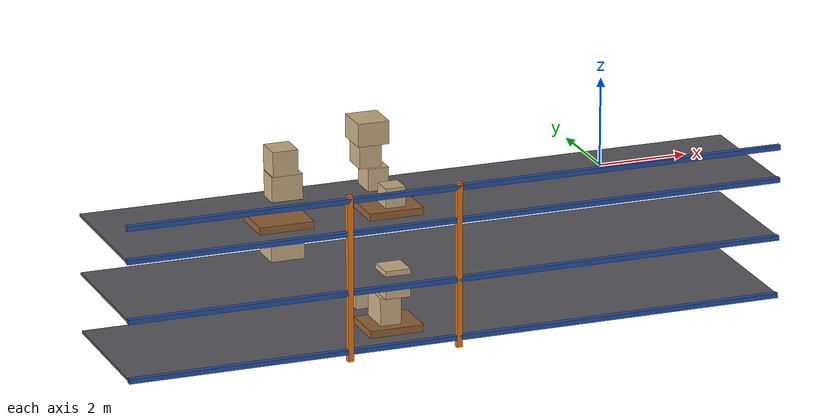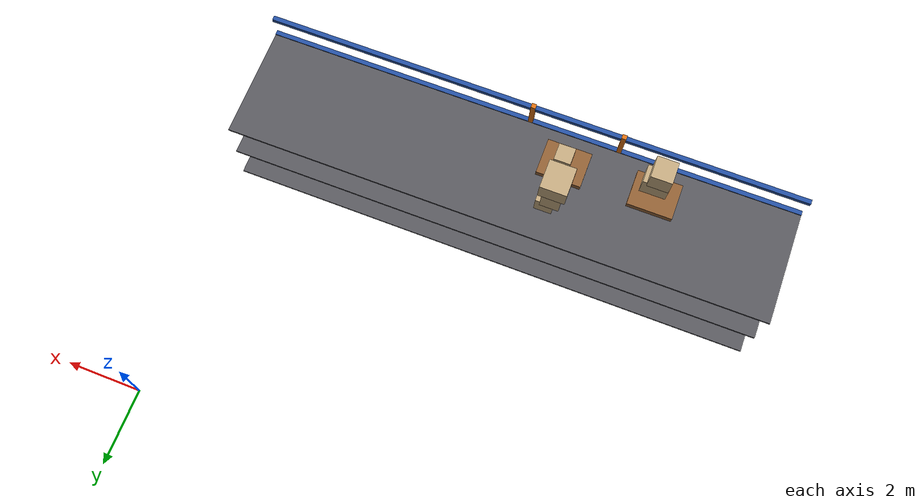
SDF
<sdf version="1.7">
 <world name="default">
  <model name="warehouse_racks">
   <static>1</static>
   <link name="r00_u2_0">
    <pose>-9.33333 -9.5 1.75 0 0 0</pose>
    <collision name="c"><geometry><box><size>0.12 0.12 3.5</size></box></geometry></collision>
    <visual name="v">
     <geometry><box><size>0.12 0.12 3.5</size></box></geometry>
     <material>
      <ambient>0.910 0.471 0.086 1</ambient>
      <diffuse>0.910 0.471 0.086 1</diffuse>
      <specular>0.1 0.1 0.1 1</specular>
     </material>
    </visual>
   </link>
   <link name="r00_u3_0">
    <pose>-7 -9.5 1.75 0 0 0</pose>
    <collision name="c"><geometry><box><size>0.12 0.12 3.5</size></box></geometry></collision>
    <visual name="v">
     <geometry><box><size>0.12 0.12 3.5</size></box></geometry>
     <material>
      <ambient>0.910 0.471 0.086 1</ambient>
      <diffuse>0.910 0.471 0.086 1</diffuse>
      <specular>0.1 0.1 0.1 1</specular>
     </material>
    </visual>
   </link>
   <link name="r00_b0_0">
    <pose>-7 -9.5 0.2 0 0 0</pose>
    <collision name="c"><geometry><box><size>14 0.12 0.1</size></box></geometry></collision>
    <visual name="v">
     <geometry><box><size>14 0.12 0.1</size></box></geometry>
     <material>
      <ambient>0.149 0.329 0.659 1</ambient>
      <diffuse>0.149 0.329 0.659 1</diffuse>
      <specular>0.1 0.1 0.1 1</specular>
     </material>
    </visual>
   </link>
   <link name="r00_b1_0">
    <pose>-7 -9.5 1.45 0 0 0</pose>
    <collision name="c"><geometry><box><size>14 0.12 0.1</size></box></geometry></collision>
    <visual name="v">
     <geometry><box><size>14 0.12 0.1</size></box></geometry>
     <material>
      <ambient>0.149 0.329 0.659 1</ambient>
      <diffuse>0.149 0.329 0.659 1</diffuse>
      <specular>0.1 0.1 0.1 1</specular>
     </material>
    </visual>
   </link>
   <link name="r00_b2_0">
    <pose>-7 -9.5 2.7 0 0 0</pose>
    <collision name="c"><geometry><box><size>14 0.12 0.1</size></box></geometry></collision>
    <visual name="v">
     <geometry><box><size>14 0.12 0.1</size></box></geometry>
     <material>
      <ambient>0.149 0.329 0.659 1</ambient>
      <diffuse>0.149 0.329 0.659 1</diffuse>
      <specular>0.1 0.1 0.1 1</specular>
     </material>
    </visual>
   </link>
   <link name="r00_b3_0">
    <pose>-7 -9.5 3.4 0 0 0</pose>
    <collision name="c"><geometry><box><size>14 0.12 0.1</size></box></geometry></collision>
    <visual name="v">
     <geometry><box><size>14 0.12 0.1</size></box></geometry>
     <material>
      <ambient>0.149 0.329 0.659 1</ambient>
      <diffuse>0.149 0.329 0.659 1</diffuse>
      <specular>0.1 0.1 0.1 1</specular>
     </material>
    </visual>
   </link>
   <link name="r00_d0">
    <pose>-7 -8 0.2 0 0 0</pose>
    <collision name="c"><geometry><box><size>14 3 0.05</size></box></geometry></collision>
    <visual name="v">
     <geometry><box><size>14 3 0.05</size></box></geometry>
     <material>
      <ambient>0.361 0.361 0.384 1</ambient>
      <diffuse>0.361 0.361 0.384 1</diffuse>
      <specular>0.1 0.1 0.1 1</specular>
     </material>
    </visual>
   </link>
   <link name="r00_d1">
    <pose>-7 -8 1.45 0 0 0</pose>
    <collision name="c"><geometry><box><size>14 3 0.05</size></box></geometry></collision>
    <visual name="v">
     <geometry><box><size>14 3 0.05</size></box></geometry>
     <material>
      <ambient>0.361 0.361 0.384 1</ambient>
      <diffuse>0.361 0.361 0.384 1</diffuse>
      <specular>0.1 0.1 0.1 1</specular>
     </material>
    </visual>
   </link>
   <link name="r00_d2">
    <pose>-7 -8 2.7 0 0 0</pose>
    <collision name="c"><geometry><box><size>14 3 0.05</size></box></geometry></collision>
    <visual name="v">
     <geometry><box><size>14 3 0.05</size></box></geometry>
     <material>
      <ambient>0.361 0.361 0.384 1</ambient>
      <diffuse>0.361 0.361 0.384 1</diffuse>
      <specular>0.1 0.1 0.1 1</specular>
     </material>
    </visual>
   </link>
  </model>
  <model name="warehouse_loads">
   <static>1</static>
   <link name="r00L0_1_1_c1">
    <pose>-10.4206 -7.46911 1.13352 0 0 0</pose>
    <collision name="c"><geometry><box><size>0.425592 0.634315 0.545984</size></box></geometry></collision>
    <visual name="v">
     <geometry><box><size>0.425592 0.634315 0.545984</size></box></geometry>
     <material>
      <ambient>0.792 0.690 0.518 1</ambient>
      <diffuse>0.792 0.690 0.518 1</diffuse>
      <specular>0.1 0.1 0.1 1</specular>
     </material>
    </visual>
   </link>
   <link name="r00L0_2_0_p">
    <pose>-8.16667 -8.6 0.325 0 0 0</pose>
    <collision name="c"><geometry><box><size>1.15 0.95 0.15</size></box></geometry></collision>
    <visual name="v">
     <geometry><box><size>1.15 0.95 0.15</size></box></geometry>
     <material>
      <ambient>0.588 0.392 0.216 1</ambient>
      <diffuse>0.588 0.392 0.216 1</diffuse>
      <specular>0.1 0.1 0.1 1</specular>
     </material>
    </visual>
   </link>
   <link name="r00L0_2_0_c0">
    <pose>-8.22275 -8.5095 0.695943 0 0 0</pose>
    <collision name="c"><geometry><box><size>0.450043 0.708991 0.591886</size></box></geometry></collision>
    <visual name="v">
     <geometry><box><size>0.450043 0.708991 0.591886</size></box></geometry>
     <material>
      <ambient>0.792 0.690 0.518 1</ambient>
      <diffuse>0.792 0.690 0.518 1</diffuse>
      <specular>0.1 0.1 0.1 1</specular>
     </material>
    </visual>
   </link>
   <link name="r00L0_2_0_c1">
    <pose>-8.10018 -8.66771 1.29062 0 0 0</pose>
    <collision name="c"><geometry><box><size>0.53939 0.570541 0.597468</size></box></geometry></collision>
    <visual name="v">
     <geometry><box><size>0.53939 0.570541 0.597468</size></box></geometry>
     <material>
      <ambient>0.792 0.690 0.518 1</ambient>
      <diffuse>0.792 0.690 0.518 1</diffuse>
      <specular>0.1 0.1 0.1 1</specular>
     </material>
    </visual>
   </link>
   <link name="r00L0_2_1_c0">
    <pose>-8.19534 -7.48156 0.62766 0 0 0</pose>
    <collision name="c"><geometry><box><size>0.747925 0.541333 0.455319</size></box></geometry></collision>
    <visual name="v">
     <geometry><box><size>0.747925 0.541333 0.455319</size></box></geometry>
     <material>
      <ambient>0.792 0.690 0.518 1</ambient>
      <diffuse>0.792 0.690 0.518 1</diffuse>
      <specular>0.1 0.1 0.1 1</specular>
     </material>
    </visual>
   </link>
   <link name="r00L0_2_1_c1">
    <pose>-8.12604 -7.42313 1.08765 0 0 0</pose>
    <collision name="c"><geometry><box><size>0.528083 0.518293 0.464668</size></box></geometry></collision>
    <visual name="v">
     <geometry><box><size>0.528083 0.518293 0.464668</size></box></geometry>
     <material>
      <ambient>0.792 0.690 0.518 1</ambient>
      <diffuse>0.792 0.690 0.518 1</diffuse>
      <specular>0.1 0.1 0.1 1</specular>
     </material>
    </visual>
   </link>
   <link name="r00L1_1_0_c1">
    <pose>-10.4021 -8.50362 2.24626 0 0 0</pose>
    <collision name="c"><geometry><box><size>0.708675 0.655095 0.38493</size></box></geometry></collision>
    <visual name="v">
     <geometry><box><size>0.708675 0.655095 0.38493</size></box></geometry>
     <material>
      <ambient>0.792 0.690 0.518 1</ambient>
      <diffuse>0.792 0.690 0.518 1</diffuse>
      <specular>0.1 0.1 0.1 1</specular>
     </material>
    </visual>
   </link>
   <link name="r00L2_1_0_p">
    <pose>-10.5 -8.6 2.825 0 0 0</pose>
    <collision name="c"><geometry><box><size>1.15 0.95 0.15</size></box></geometry></collision>
    <visual name="v">
     <geometry><box><size>1.15 0.95 0.15</size></box></geometry>
     <material>
      <ambient>0.588 0.392 0.216 1</ambient>
      <diffuse>0.588 0.392 0.216 1</diffuse>
      <specular>0.1 0.1 0.1 1</specular>
     </material>
    </visual>
   </link>
   <link name="r00L2_1_0_c1">
    <pose>-10.4049 -8.60121 3.58053 0 0 0</pose>
    <collision name="c"><geometry><box><size>0.655267 0.471826 0.534957</size></box></geometry></collision>
    <visual name="v">
     <geometry><box><size>0.655267 0.471826 0.534957</size></box></geometry>
     <material>
      <ambient>0.792 0.690 0.518 1</ambient>
      <diffuse>0.792 0.690 0.518 1</diffuse>
      <specular>0.1 0.1 0.1 1</specular>
     </material>
    </visual>
   </link>
   <link name="r00L2_1_0_c2">
    <pose>-10.4466 -8.57661 4.10847 0 0 0</pose>
    <collision name="c"><geometry><box><size>0.533896 0.567654 0.520924</size></box></geometry></collision>
    <visual name="v">
     <geometry><box><size>0.533896 0.567654 0.520924</size></box></geometry>
     <material>
      <ambient>0.792 0.690 0.518 1</ambient>
      <diffuse>0.792 0.690 0.518 1</diffuse>
      <specular>0.1 0.1 0.1 1</specular>
     </material>
    </visual>
   </link>
   <link name="r00L2_2_0_p">
    <pose>-8.16667 -8.6 2.825 0 0 0</pose>
    <collision name="c"><geometry><box><size>1.15 0.95 0.15</size></box></geometry></collision>
    <visual name="v">
     <geometry><box><size>1.15 0.95 0.15</size></box></geometry>
     <material>
      <ambient>0.588 0.392 0.216 1</ambient>
      <diffuse>0.588 0.392 0.216 1</diffuse>
      <specular>0.1 0.1 0.1 1</specular>
     </material>
    </visual>
   </link>
   <link name="r00L2_2_0_c0">
    <pose>-8.11802 -8.63912 3.10674 0 0 0</pose>
    <collision name="c"><geometry><box><size>0.427115 0.451599 0.413485</size></box></geometry></collision>
    <visual name="v">
     <geometry><box><size>0.427115 0.451599 0.413485</size></box></geometry>
     <material>
      <ambient>0.792 0.690 0.518 1</ambient>
      <diffuse>0.792 0.690 0.518 1</diffuse>
      <specular>0.1 0.1 0.1 1</specular>
     </material>
    </visual>
   </link>
   <link name="r00L2_2_1_c0">
    <pose>-8.07216 -7.4801 3.13572 0 0 0</pose>
    <collision name="c"><geometry><box><size>0.446704 0.568847 0.47145</size></box></geometry></collision>
    <visual name="v">
     <geometry><box><size>0.446704 0.568847 0.47145</size></box></geometry>
     <material>
      <ambient>0.792 0.690 0.518 1</ambient>
      <diffuse>0.792 0.690 0.518 1</diffuse>
      <specular>0.1 0.1 0.1 1</specular>
     </material>
    </visual>
   </link>
   <link name="r00L2_2_1_c1">
    <pose>-8.20956 -7.40682 3.63506 0 0 0</pose>
    <collision name="c"><geometry><box><size>0.476193 0.571365 0.527218</size></box></geometry></collision>
    <visual name="v">
     <geometry><box><size>0.476193 0.571365 0.527218</size></box></geometry>
     <material>
      <ambient>0.792 0.690 0.518 1</ambient>
      <diffuse>0.792 0.690 0.518 1</diffuse>
      <specular>0.1 0.1 0.1 1</specular>
     </material>
    </visual>
   </link>
   <link name="r00L2_2_1_c2">
    <pose>-8.20433 -7.48283 4.1423 0 0 0</pose>
    <collision name="c"><geometry><box><size>0.668509 0.747655 0.487269</size></box></geometry></collision>
    <visual name="v">
     <geometry><box><size>0.668509 0.747655 0.487269</size></box></geometry>
     <material>
      <ambient>0.792 0.690 0.518 1</ambient>
      <diffuse>0.792 0.690 0.518 1</diffuse>
      <specular>0.1 0.1 0.1 1</specular>
     </material>
    </visual>
   </link>
  </model>
 </world>
</sdf>
